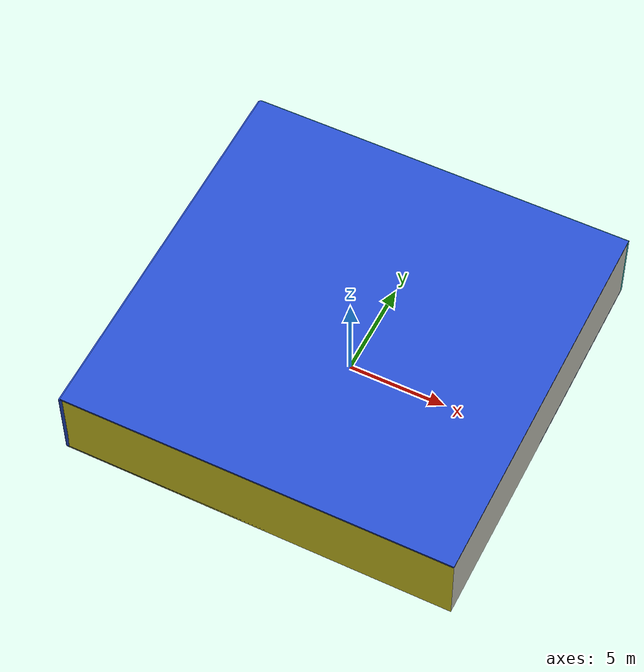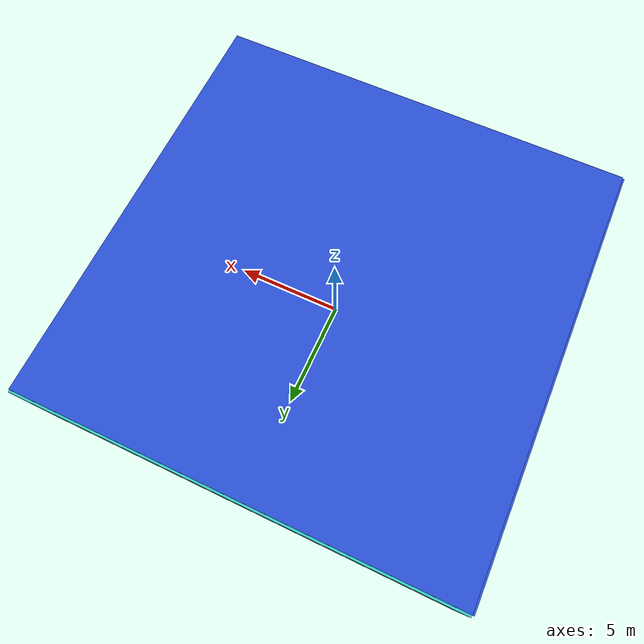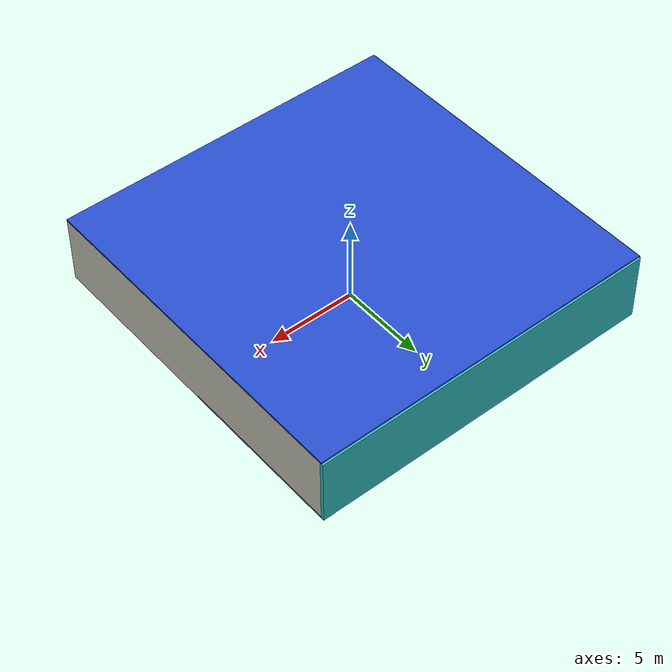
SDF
<sdf version="1.4">
 <world name="default">
  <physics type="ode">
   <max_step_size>0.001</max_step_size>
   <real_time_factor>1</real_time_factor>
   <real_time_update_rate>1000</real_time_update_rate>
   <gravity>0 0 -9.8</gravity>
  </physics>
  <scene><ambient>0.4 0.4 0.4 1</ambient><background>0.7 0.7 0.7 1</background><shadows>1</shadows></scene>
  <model name="Surrounding">
   <static>1</static>
   <link name="Ceiling">
    <collision name="Ceiling_Collision"><geometry><box><size>20 20 0.1</size></box></geometry></collision>
    <visual name="Ceiling_Visual">
     <geometry><box><size>20 20 0.1</size></box></geometry>
     <material>
      <script><uri>file://media/materials/scripts/gazebo.material</uri><name>Gazebo/Blue</name></script>
     </material>
    </visual>
    <pose>0 0 4.05 0 0 0</pose>
   </link>
   <link name="Wall_South">
    <collision name="Wall_South_Collision">
     <geometry><box><size>20 0 4</size></box></geometry>
     <pose>0 0 2 0 -0 0</pose>
    </collision>
    <visual name="Wall_South_Visual">
     <pose>0 0 2 0 -0 0</pose>
     <geometry><box><size>20 0 4</size></box></geometry>
     <material>
      <script><uri>file://media/materials/scripts/gazebo.material</uri><name>Gazebo/Yellow</name></script>
     </material>
    </visual>
    <velocity_decay><linear>0</linear><angular>0</angular></velocity_decay>
    <pose>0 -10 0 0 -0 0</pose>
   </link>
   <link name="Wall_East">
    <collision name="Wall_21_Collision">
     <geometry><box><size>20 0 4</size></box></geometry>
     <pose>0 0 2 0 -0 0</pose>
    </collision>
    <visual name="Wall_21_Visual">
     <pose>0 0 2 0 -0 0</pose>
     <geometry><box><size>20 0 4</size></box></geometry>
     <material>
      <script><uri>file://media/materials/scripts/gazebo.material</uri><name>Gazebo/PaintedWall</name></script>
     </material>
    </visual>
    <velocity_decay><linear>0</linear><angular>0</angular></velocity_decay>
    <pose>10 0 0 0 -0 1.5708</pose>
   </link>
   <link name="Wall_North">
    <collision name="Wall_22_Collision">
     <geometry><box><size>20 0.2 4</size></box></geometry>
     <pose>0 0 2 0 -0 0</pose>
    </collision>
    <visual name="Wall_22_Visual">
     <pose>0 0 2 0 -0 0</pose>
     <geometry><box><size>20 0.2 4</size></box></geometry>
     <material>
      <script><uri>file://media/materials/scripts/gazebo.material</uri><name>Gazebo/Turquoise</name></script>
     </material>
    </visual>
    <velocity_decay><linear>0</linear><angular>0</angular></velocity_decay>
    <pose>0 10 0 0 -0 0</pose>
   </link>
   <link name="Wall_West">
    <collision name="Wall_23_Collision">
     <geometry><box><size>20 0.2 4</size></box></geometry>
     <pose>0 0 2 0 -0 0</pose>
    </collision>
    <visual name="Wall_23_Visual">
     <pose>0 0 2 0 -0 0</pose>
     <geometry><box><size>20 0.2 4</size></box></geometry>
     <material>
      <script><uri>file://media/materials/scripts/gazebo.material</uri><name>Gazebo/Blue</name></script>
     </material>
    </visual>
    <velocity_decay><linear>0</linear><angular>0</angular></velocity_decay>
    <pose>-10 0 0 0 0 -1.5708</pose>
   </link>
   <link name="Ground_link">
    <collision name="collision">
     <pose>0 0 .05 0 -0 0</pose>
     <geometry><box><size>20 20 0.1</size></box></geometry>
    </collision>
    <visual name="visual">
     <pose>0 0 .05 0 -0 0</pose>
     <geometry><box><size>20 20 0.1</size></box></geometry>
     <material>
      <script><uri>file://media/materials/scripts/gazebo.material</uri><name>Gazebo/BlueTransparent</name></script>
     </material>
    </visual>
   </link>
   <static>1</static>
  </model>
  <spherical_coordinates>
   <surface_model>EARTH_WGS84</surface_model>
   <latitude_deg>0</latitude_deg>
   <longitude_deg>0</longitude_deg>
   <elevation>0</elevation>
   <heading_deg>0</heading_deg>
  </spherical_coordinates>
  <light name="lightball_0" type="diffuse">
   <diffuse>0.8 0.8 0.8 1</diffuse>
   <specular>0.2 0.2 0.2 1</specular>
   <attenuation>
    <range>100</range>
    <constant>0.7</constant>
    <linear>0.01</linear>
    <quadratic>0.001</quadratic>
   </attenuation>
   <direction>-0.5 0.1 -0.9</direction>
   <pose>-7.77916945475 -1.67466217853 3.01268444296 0 0 0</pose>
  </light>
  <light name="lightball_1" type="diffuse">
   <diffuse>0.8 0.8 0.8 1</diffuse>
   <specular>0.2 0.2 0.2 1</specular>
   <attenuation>
    <range>100</range>
    <constant>0.7</constant>
    <linear>0.01</linear>
    <quadratic>0.001</quadratic>
   </attenuation>
   <direction>-0.5 0.1 -0.9</direction>
   <pose>2.153917344 5.98923152512 0.719109744969 0 0 0</pose>
  </light>
  <light name="lightball_2" type="diffuse">
   <diffuse>0.8 0.8 0.8 1</diffuse>
   <specular>0.2 0.2 0.2 1</specular>
   <attenuation>
    <range>100</range>
    <constant>0.7</constant>
    <linear>0.01</linear>
    <quadratic>0.001</quadratic>
   </attenuation>
   <direction>-0.5 0.1 -0.9</direction>
   <pose>-3.90098380924 -8.00901942549 1.98031903506 0 0 0</pose>
  </light>
  <light name="lightball_3" type="diffuse">
   <diffuse>0.8 0.8 0.8 1</diffuse>
   <specular>0.2 0.2 0.2 1</specular>
   <attenuation>
    <range>100</range>
    <constant>0.7</constant>
    <linear>0.01</linear>
    <quadratic>0.001</quadratic>
   </attenuation>
   <direction>-0.5 0.1 -0.9</direction>
   <pose>6.87098229625 2.2192247037 0.966988568521 0 0 0</pose>
  </light>
  <light name="lightball_4" type="diffuse">
   <diffuse>0.8 0.8 0.8 1</diffuse>
   <specular>0.2 0.2 0.2 1</specular>
   <attenuation>
    <range>100</range>
    <constant>0.7</constant>
    <linear>0.01</linear>
    <quadratic>0.001</quadratic>
   </attenuation>
   <direction>-0.5 0.1 -0.9</direction>
   <pose>7.90368112776 -2.78957592121 2.70214052575 0 0 0</pose>
  </light>
  <light name="lightball_5" type="diffuse">
   <diffuse>0.8 0.8 0.8 1</diffuse>
   <specular>0.2 0.2 0.2 1</specular>
   <attenuation>
    <range>100</range>
    <constant>0.7</constant>
    <linear>0.01</linear>
    <quadratic>0.001</quadratic>
   </attenuation>
   <direction>-0.5 0.1 -0.9</direction>
   <pose>0.166795732631 1.40244477219 3.22182272201 0 0 0</pose>
  </light>
  <light name="lightball_6" type="diffuse">
   <diffuse>0.8 0.8 0.8 1</diffuse>
   <specular>0.2 0.2 0.2 1</specular>
   <attenuation>
    <range>100</range>
    <constant>0.7</constant>
    <linear>0.01</linear>
    <quadratic>0.001</quadratic>
   </attenuation>
   <direction>-0.5 0.1 -0.9</direction>
   <pose>8.77651395058 -5.56041051816 2.25738413576 0 0 0</pose>
  </light>
  <light name="lightball_7" type="diffuse">
   <diffuse>0.8 0.8 0.8 1</diffuse>
   <specular>0.2 0.2 0.2 1</specular>
   <attenuation>
    <range>100</range>
    <constant>0.7</constant>
    <linear>0.01</linear>
    <quadratic>0.001</quadratic>
   </attenuation>
   <direction>-0.5 0.1 -0.9</direction>
   <pose>-5.51553850354 -8.61058962345 2.52794318913 0 0 0</pose>
  </light>
  <light name="lightball_8" type="diffuse">
   <diffuse>0.8 0.8 0.8 1</diffuse>
   <specular>0.2 0.2 0.2 1</specular>
   <attenuation>
    <range>100</range>
    <constant>0.7</constant>
    <linear>0.01</linear>
    <quadratic>0.001</quadratic>
   </attenuation>
   <direction>-0.5 0.1 -0.9</direction>
   <pose>5.55446209795 -4.63962608343 3.82250322473 0 0 0</pose>
  </light>
  <light name="lightball_9" type="diffuse">
   <diffuse>0.8 0.8 0.8 1</diffuse>
   <specular>0.2 0.2 0.2 1</specular>
   <attenuation>
    <range>100</range>
    <constant>0.7</constant>
    <linear>0.01</linear>
    <quadratic>0.001</quadratic>
   </attenuation>
   <direction>-0.5 0.1 -0.9</direction>
   <pose>6.2690730813 2.48125312029 1.78021329931 0 0 0</pose>
  </light>
  <light name="lightball_10" type="diffuse">
   <diffuse>0.8 0.8 0.8 1</diffuse>
   <specular>0.2 0.2 0.2 1</specular>
   <attenuation>
    <range>100</range>
    <constant>0.7</constant>
    <linear>0.01</linear>
    <quadratic>0.001</quadratic>
   </attenuation>
   <direction>-0.5 0.1 -0.9</direction>
   <pose>-1.44259065863 -5.74050275961 2.38364373619 0 0 0</pose>
  </light>
  <include><uri>model://table</uri><pose>-7.30019315879 7.16833733045 0 0 0 1.28866112964</pose></include>
  <include>
   <uri>model://construction_cone</uri>
   <pose>-4.83240729558 -4.37169968742 0 0 0 1.36428025955</pose>
  </include>
  <include><uri>model://table</uri><pose>-0.941104315863 1.35171923435 0 0 0 2.38501930866</pose></include>
  <include>
   <uri>model://construction_cone</uri>
   <pose>1.64914891238 -6.72682963997 0 0 0 0.392155149365</pose>
  </include>
  <include><uri>model://table</uri><pose>0.944506433055 -4.92431765273 0 0 0 0.47248316212</pose></include>
  <include>
   <uri>model://textured_shapes</uri>
   <pose>2.29440354001 4.78816993133 0 0 0 0.387571696525</pose>
  </include>
  <include>
   <uri>model://robocup_3Dsim_goal</uri>
   <pose>4.75123597269 -7.32925088004 0 0 0 0.392393947743</pose>
  </include>
  <include><uri>model://cabinet</uri><pose>4.47008058937 -0.876726847305 0 0 0 0.512607740704</pose></include>
  <include>
   <uri>model://construction_cone</uri>
   <pose>8.11786154017 -0.790685428227 0 0 0 0.274262548118</pose>
  </include>
 </world>
</sdf>

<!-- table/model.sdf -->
<sdf version="1.5">
  <model name="table">
    <static>true</static>
    <link name="link">
      <collision name="surface">
        <pose>0 0 1.0 0 0 0</pose>
        <geometry>
          <box>
            <size>1.5 0.8 0.03</size>
          </box>
        </geometry>
        <surface>
          <friction>
            <ode>
              <mu>0.6</mu>
              <mu2>0.6</mu2>
            </ode>
          </friction>
        </surface>
      </collision>
      <visual name="visual1">
        <pose>0 0 1.0 0 0 0</pose>
        <geometry>
          <box>
            <size>1.5 0.8 0.03</size>
          </box>
        </geometry>
        <material>
          <script>
            <uri>model://media/materials/scripts/gazebo.material</uri>
            <name>Gazebo/Wood</name>
          </script>
        </material>
      </visual>
      <collision name="front_left_leg">
        <pose>0.68 0.38 0.5 0 0 0</pose>
        <geometry>
          <cylinder>
            <radius>0.02</radius>
            <length>1.0</length>
          </cylinder>
        </geometry>
      </collision>
      <visual name="front_left_leg">
        <pose>0.68 0.38 0.5 0 0 0</pose>
        <geometry>
          <cylinder>
            <radius>0.02</radius>
            <length>1.0</length>
          </cylinder>
        </geometry>
        <material>
          <script>
            <uri>model://media/materials/scripts/gazebo.material</uri>
            <name>Gazebo/Grey</name>
          </script>
        </material>
      </visual>
      <collision name="front_right_leg">
        <pose>0.68 -0.38 0.5 0 0 0</pose>
        <geometry>
          <cylinder>
            <radius>0.02</radius>
            <length>1.0</length>
          </cylinder>
        </geometry>
      </collision>
      <visual name="front_right_leg">
        <pose>0.68 -0.38 0.5 0 0 0</pose>
        <geometry>
          <cylinder>
            <radius>0.02</radius>
            <length>1.0</length>
          </cylinder>
        </geometry>
        <material>
          <script>
            <uri>model://media/materials/scripts/gazebo.material</uri>
            <name>Gazebo/Grey</name>
          </script>
        </material>
      </visual>
      <collision name="back_right_leg">
        <pose>-0.68 -0.38 0.5 0 0 0</pose>
        <geometry>
          <cylinder>
            <radius>0.02</radius>
            <length>1.0</length>
          </cylinder>
        </geometry>
      </collision>
      <visual name="back_right_leg">
        <pose>-0.68 -0.38 0.5 0 0 0</pose>
        <geometry>
          <cylinder>
            <radius>0.02</radius>
            <length>1.0</length>
          </cylinder>
        </geometry>
        <material>
          <script>
            <uri>model://media/materials/scripts/gazebo.material</uri>
            <name>Gazebo/Grey</name>
          </script>
        </material>
      </visual>
      <collision name="back_left_leg">
        <pose>-0.68 0.38 0.5 0 0 0</pose>
        <geometry>
          <cylinder>
            <radius>0.02</radius>
            <length>1.0</length>
          </cylinder>
        </geometry>
      </collision>
      <visual name="back_left_leg">
        <pose>-0.68 0.38 0.5 0 0 0</pose>
        <geometry>
          <cylinder>
            <radius>0.02</radius>
            <length>1.0</length>
          </cylinder>
        </geometry>
        <material>
          <script>
            <uri>model://media/materials/scripts/gazebo.material</uri>
            <name>Gazebo/Grey</name>
          </script>
        </material>
      </visual>
    </link>
  </model>
</sdf>

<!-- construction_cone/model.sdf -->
<sdf version="1.5">
  <model name="Construction Cone">
    <link name="link">
      <collision name="collision">
        <geometry>
          <mesh>
            <scale>10 10 10</scale>
            <uri>file://isr-testbed/construction_cone/meshes/construction_cone.dae</uri>
          </mesh>
        </geometry>
      </collision>
      <visual name="visual">
        <geometry>
          <mesh>
            <scale>10 10 10</scale>
            <uri>file://isr-testbed/construction_cone/meshes/construction_cone.dae</uri>
          </mesh>
        </geometry>
      </visual>
    </link>
  </model>
</sdf>

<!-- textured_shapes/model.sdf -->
<sdf version="1.6">
  <model name="textured_shapes">
    <pose>0 0 0.5 0 0 0</pose>
    <link name="box">
      <pose>0 -1.5 0 0 0 0</pose>
      <collision name="collision">
        <geometry>
          <box>
            <size>1 1 1</size>
          </box>
        </geometry>
      </collision>
      <visual name="visual">
        <geometry>
          <box>
            <size>1 1 1</size>
          </box>
        </geometry>
        <material>
          <script>
            <uri>model://../model_source/models/textured_shapes/materials/scripts</uri>
            <uri>model://../model_source/models/textured_shapes/materials/textures</uri>
            <name>TexturedShape/Squares</name>
          </script>
        </material>
      </visual>
    </link>
    <link name="sphere">
      <collision name="collision">
        <geometry>
          <sphere>
            <radius>0.5</radius>
          </sphere>
        </geometry>
      </collision>
      <visual name="visual">
        <geometry>
          <sphere>
            <radius>0.5</radius>
          </sphere>
        </geometry>
        <material>
          <script>
            <uri>model://../model_source/models/textured_shapes/materials/scripts</uri>
            <uri>model://../model_source/models/textured_shapes/materials/textures</uri>
            <name>TexturedShape/Squares</name>
          </script>
        </material>
      </visual>
    </link>
    <link name="cylinder">
      <pose>0 1.5 0 0 0 0</pose>
      <collision name="collision">
        <geometry>
          <cylinder>
            <radius>0.5</radius>
            <length>1</length>
          </cylinder>
        </geometry>
      </collision>
      <visual name="visual">
        <geometry>
          <cylinder>
            <radius>0.5</radius>
            <length>1</length>
          </cylinder>
        </geometry>
        <material>
          <script>
            <uri>model://../model_source/models/textured_shapes/materials/scripts</uri>
            <uri>model://../model_source/models/textured_shapes/materials/textures</uri>
            <name>TexturedShape/Squares</name>
          </script>
        </material>
      </visual>
    </link>
  </model>
</sdf>

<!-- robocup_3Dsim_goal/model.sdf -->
<sdf version="1.5">
  <model name="robocup_3d_goal">
    <static>true</static>
    <link name="left_post">
      <pose>0 1.05 0.45 0 0 0</pose>
      <collision name="collision">
        <geometry>
          <cylinder>
            <radius>0.05</radius>
            <length>0.9</length>
          </cylinder>
        </geometry>
      </collision>
      <visual name="visual">
        <geometry>
          <cylinder>
            <radius>0.05</radius>
            <length>0.9</length>
          </cylinder>
        </geometry>
        <material>
          <script>
            <uri>file://media/materials/scripts/gazebo.material</uri>
            <name>Gazebo/ZincYellow</name>
          </script>
        </material>
      </visual>
    </link>
    <link name="left_support_horiz_lower">
      <pose>0.30 1.05 0.01 0 0 0</pose>
      <collision name="collision">
        <geometry>
          <box>
            <size>0.50 0.02 0.02</size>
          </box>
        </geometry>
      </collision>
      <visual name="visual">
        <geometry>
          <box>
            <size>0.50 0.02 0.02</size>
          </box>
        </geometry>
        <material>
          <script>
            <uri>file://media/materials/scripts/gazebo.material</uri>
            <name>Gazebo/White</name>
          </script>
        </material>
      </visual>
    </link>
    <link name="left_support_horiz_upper">
      <pose>0.30 1.05 0.79 0 0 0</pose>
      <collision name="collision">
        <geometry>
          <box>
            <size>0.50 0.02 0.02</size>
          </box>
        </geometry>
      </collision>
      <visual name="visual">
        <geometry>
          <box>
            <size>0.50 0.02 0.02</size>
          </box>
        </geometry>
        <material>
          <script>
            <uri>file://media/materials/scripts/gazebo.material</uri>
            <name>Gazebo/White</name>
          </script>
        </material>
      </visual>
    </link>
    <link name="left_support_vertical">
      <pose>0.56 1.05 0.4 0 1.5708 0</pose>
      <collision name="collision">
        <geometry>
          <box>
            <size>0.80 0.02 0.02</size>
          </box>
        </geometry>
      </collision>
      <visual name="visual">
        <geometry>
          <box>
            <size>0.80 0.02 0.02</size>
          </box>
        </geometry>
        <material>
          <script>
            <uri>file://media/materials/scripts/gazebo.material</uri>
            <name>Gazebo/White</name>
          </script>
        </material>
      </visual>
    </link>
    <link name="right_support_horiz_lower">
      <pose>0.30 -1.05 0.01 0 0 0</pose>
      <collision name="collision">
        <geometry>
          <box>
            <size>0.50 0.02 0.02</size>
          </box>
        </geometry>
      </collision>
      <visual name="visual">
        <geometry>
          <box>
            <size>0.50 0.02 0.02</size>
          </box>
        </geometry>
        <material>
          <script>
            <uri>file://media/materials/scripts/gazebo.material</uri>
            <name>Gazebo/White</name>
          </script>
        </material>
      </visual>
    </link>
    <link name="right_support_horiz_upper">
      <pose>0.30 -1.05 0.79 0 0 0</pose>
      <collision name="collision">
        <geometry>
          <box>
            <size>0.50 0.02 0.02</size>
          </box>
        </geometry>
      </collision>
      <visual name="visual">
        <geometry>
          <box>
            <size>0.50 0.02 0.02</size>
          </box>
        </geometry>
        <material>
          <script>
            <uri>file://media/materials/scripts/gazebo.material</uri>
            <name>Gazebo/White</name>
          </script>
        </material>
      </visual>
    </link>
    <link name="right_support_vertical">
      <pose>0.56 -1.05 0.4 0 1.5708 0</pose>
      <collision name="collision">
        <geometry>
          <box>
            <size>0.80 0.02 0.02</size>
          </box>
        </geometry>
      </collision>
      <visual name="visual">
        <geometry>
          <box>
            <size>0.80 0.02 0.02</size>
          </box>
        </geometry>
        <material>
          <script>
            <uri>file://media/materials/scripts/gazebo.material</uri>
            <name>Gazebo/White</name>
          </script>
        </material>
      </visual>
    </link>
    <link name="center_support_horiz_lower">
      <pose>0.56 0 0.01 0 1.5708 0</pose>
      <collision name="collision">
        <geometry>
          <box>
            <size>0.02 2.08 0.02</size>
          </box>
        </geometry>
      </collision>
      <visual name="visual">
        <geometry>
          <box>
            <size>0.02 2.08 0.02</size>
          </box>
        </geometry>
        <material>
          <script>
            <uri>file://media/materials/scripts/gazebo.material</uri>
            <name>Gazebo/White</name>
          </script>
        </material>
      </visual>
    </link>
    <link name="center_support_horiz_upper">
      <pose>0.56 0 0.79 0 1.5708 0</pose>
      <collision name="collision">
        <geometry>
          <box>
            <size>0.02 2.08 0.02</size>
          </box>
        </geometry>
      </collision>
      <visual name="visual">
        <geometry>
          <box>
            <size>0.02 2.08 0.02</size>
          </box>
        </geometry>
        <material>
          <script>
            <uri>file://media/materials/scripts/gazebo.material</uri>
            <name>Gazebo/White</name>
          </script>
        </material>
      </visual>
    </link>
    <link name="right_post">
      <pose>0 -1.05 0.45 0 0 0</pose>
      <collision name="collision">
        <geometry>
          <cylinder>
            <radius>0.05</radius>
            <length>0.9</length>
          </cylinder>
        </geometry>
      </collision>
      <visual name="visual">
        <geometry>
          <cylinder>
            <radius>0.05</radius>
            <length>0.9</length>
          </cylinder>
        </geometry>
        <material>
          <script>
            <uri>file://media/materials/scripts/gazebo.material</uri>
            <name>Gazebo/ZincYellow</name>
          </script>
        </material>
      </visual>
    </link>
    <link name="crossbar">
      <pose>0 0 0.85 1.57 1.57 0</pose>
      <collision name="collision">
        <geometry>
          <cylinder>
            <radius>0.05</radius>
            <length>2.0</length>
          </cylinder>
        </geometry>
      </collision>
      <visual name="visual">
        <geometry>
          <cylinder>
            <radius>0.05</radius>
            <length>2.0</length>
          </cylinder>
        </geometry>
        <material>
          <script>
            <uri>file://media/materials/scripts/gazebo.material</uri>
            <name>Gazebo/ZincYellow</name>
          </script>
        </material>
      </visual>
    </link>
    <link name="center_net">
      <pose>0.56 0 0.40 0 0 0</pose>
      <collision name="collision">
        <geometry>
          <box>
            <size>0.01 2.1 0.80</size>
          </box>
        </geometry>
      </collision>
      <visual name="visual">
        <geometry>
          <box>
            <size>0.01 2.1 0.80</size>
          </box>
        </geometry>
        <material>
          <script>
            <uri>model://../model_source/models/robocup09_spl_field/materials/scripts/</uri>
            <uri>model://../model_source/models/robocup09_spl_field/materials/textures/</uri>
            <name>RoboCup/Net</name>
          </script>
        </material>
      </visual>
    </link>
    <link name="left_net">
      <pose>0.30 1.05 0.40 0 0 0</pose>
      <collision name="collision">
        <geometry>
          <box>
            <size>0.50 0.01 0.76</size>
          </box>
        </geometry>
      </collision>
      <visual name="visual">
        <geometry>
          <box>
            <size>0.50 0.01 0.76</size>
          </box>
        </geometry>
        <material>
          <script>
            <uri>model://../model_source/models/robocup09_spl_field/materials/scripts/</uri>
            <uri>model://../model_source/models/robocup09_spl_field/materials/textures/</uri>
            <name>RoboCup/Net</name>
          </script>
        </material>
      </visual>
    </link>
    <link name="right_net">
      <pose>0.30 -1.05 0.40 0 0 0</pose>
      <collision name="collision">
        <geometry>
          <box>
            <size>0.50 0.01 0.76</size>
          </box>
        </geometry>
      </collision>
      <visual name="visual">
        <geometry>
          <box>
            <size>0.50 0.01 0.76</size>
          </box>
        </geometry>
        <material>
          <script>
            <uri>model://../model_source/models/robocup09_spl_field/materials/scripts/</uri>
            <uri>model://../model_source/models/robocup09_spl_field/materials/textures/</uri>
            <name>RoboCup/Net</name>
          </script>
        </material>
      </visual>
    </link>
  </model>
</sdf>

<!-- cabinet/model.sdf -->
<sdf version="1.5">
  <model name="cabinet">
    <static>true</static>
    <link name="cabinet_bottom_plate">
      <inertial>
        <pose>0 0 -1 0 0 0</pose>
        <inertia>
          <ixx>2.050000</ixx>
          <ixy>0</ixy>
          <ixz>0</ixz>
          <iyy>2.050000</iyy>
          <iyz>0</iyz>
          <izz>2.050000</izz>
        </inertia>
        <mass>25.000000</mass>
      </inertial>
      <collision name="cabinet_bottom_plate_geom">
        <pose>0 0 0.010000 0 0 0</pose>
        <geometry>
          <box>
            <size>0.450000 0.450000 0.020000</size>
          </box>
        </geometry>
      </collision>
      <visual name="cabinet_bottom_plate_geom_visual">
        <pose>0 0 0.010000 0 0 0</pose>
        <geometry>
          <box>
            <size>0.450000 0.450000 0.020000</size>
          </box>
        </geometry>
        <material>
          <script>
            <uri>model://media/materials/scripts/gazebo.material</uri>
            <name>Gazebo/Wood</name>
          </script>
        </material>
      </visual>
      <collision name="cabinet_bottom_plate_geom_cabinet_back_plate">
        <pose>0.235000 0 0.510000 0 0 0</pose>
        <geometry>
          <box>
            <size>0.020000 0.450000 1.020000</size>
          </box>
        </geometry>
      </collision>
      <visual name="cabinet_bottom_plate_geom_cabinet_back_plate_visual">
        <pose>0.235000 0 0.510000 0 0 0</pose>
        <geometry>
          <box>
            <size>0.020000 0.450000 1.020000</size>
          </box>
        </geometry>
        <material>
          <script>
            <uri>model://media/materials/scripts/gazebo.material</uri>
            <name>Gazebo/Wood</name>
          </script>
        </material>
      </visual>
      <collision name="cabinet_bottom_plate_geom_cabinet_left_plate">
        <pose>0 0.235000 0.510000 0 0 0</pose>
        <geometry>
          <box>
            <size>0.450000 0.020000 1.020000</size>
          </box>
        </geometry>
      </collision>
      <visual name="cabinet_bottom_plate_geom_cabinet_left_plate_visual">
        <pose>0 0.235000 0.510000 0 0 0</pose>
        <geometry>
          <box>
            <size>0.450000 0.020000 1.020000</size>
          </box>
        </geometry>
        <material>
          <script>
            <uri>model://media/materials/scripts/gazebo.material</uri>
            <name>Gazebo/Wood</name>
          </script>
        </material>
      </visual>
      <collision name="cabinet_bottom_plate_geom_cabinet_middle_plate">
        <pose>0 0 0.510000 0 0 0</pose>
        <geometry>
          <box>
            <size>0.450000 0.450000 0.020000</size>
          </box>
        </geometry>
      </collision>
      <visual name="cabinet_bottom_plate_geom_cabinet_middle_plate_visual">
        <pose>0 0 0.510000 0 0 0</pose>
        <geometry>
          <box>
            <size>0.450000 0.450000 0.020000</size>
          </box>
        </geometry>
        <material>
          <script>
            <uri>model://media/materials/scripts/gazebo.material</uri>
            <name>Gazebo/Wood</name>
          </script>
        </material>
      </visual>
      <collision name="cabinet_bottom_plate_geom_cabinet_right_plate">
        <pose>0 -0.235000 0.510000 0 0 0</pose>
        <geometry>
          <box>
            <size>0.450000 0.020000 1.020000</size>
          </box>
        </geometry>
      </collision>
      <visual name="cabinet_bottom_plate_geom_cabinet_right_plate_visual">
        <pose>0 -0.235000 0.510000 0 0 0</pose>
        <geometry>
          <box>
            <size>0.450000 0.020000 1.020000</size>
          </box>
        </geometry>
        <material>
          <script>
            <uri>model://media/materials/scripts/gazebo.material</uri>
            <name>Gazebo/Wood</name>
          </script>
        </material>
      </visual>
      <collision name="cabinet_bottom_plate_geom_cabinet_top_plate">
        <pose>0 0 1.010000 0 0 0</pose>
        <geometry>
          <box>
            <size>0.450000 0.450000 0.020000</size>
          </box>
        </geometry>
      </collision>
      <visual name="cabinet_bottom_plate_geom_cabinet_top_plate_visual">
        <pose>0 0 1.010000 0 0 0</pose>
        <geometry>
          <box>
            <size>0.450000 0.450000 0.020000</size>
          </box>
        </geometry>
        <material>
          <script>
            <uri>model://media/materials/scripts/gazebo.material</uri>
            <name>Gazebo/Wood</name>
          </script>
        </material>
      </visual>
    </link>
  </model>
</sdf>
